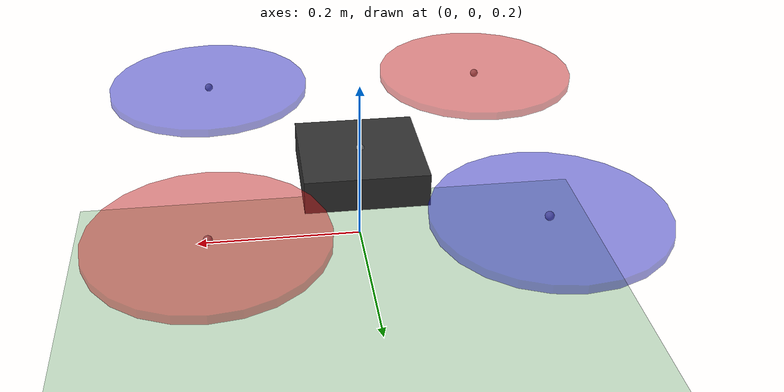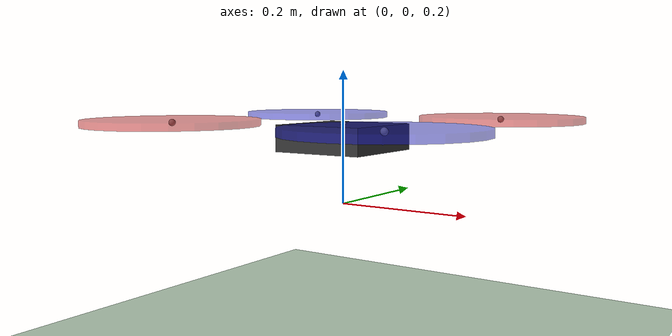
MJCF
<mujoco model="x500">
  <compiler autolimits="true"/>
  <option timestep="0.01" density="1.225" viscosity="1.8e-5" integrator="RK4"/>

  <worldbody>
    <light pos="0 0 3" dir="0 0 -1"/>
    <geom name="floor" type="plane" size="5 5 0.1" rgba="0.8 0.9 0.8 1"/>

    <body name="base_link" pos="0 0 0.3">
      <joint name="base" type="free"/>

      <inertial pos="0 0 0"
                mass="2.0"
                diaginertia="0.02167 0.02167 0.04"/>

      <!-- Body plate -->
      <geom type="box" size="0.072 0.072 0.02" rgba="0.2 0.2 0.2 1" mass="0"/>

      <site name="imu" pos="0 0 0.02"/>

      <!-- Motor 1: front-right (+x,-y), CCW → +yaw torque -->
      <body name="prop1" pos="0.177 -0.177 0.025">
        <inertial pos="0 0 0" mass="0.005"
                  diaginertia="3.75e-6 3.75e-6 7.5e-6"/>
        <joint name="prop1" axis="0 0 1"/>
        <geom type="cylinder" size="0.127 0.005" rgba="0.1 0.1 0.8 0.5" mass="0"/>
      </body>

      <!-- Motor 2: rear-right (-x,-y), CW → -yaw torque -->
      <body name="prop2" pos="-0.177 -0.177 0.025">
        <inertial pos="0 0 0" mass="0.005"
                  diaginertia="3.75e-6 3.75e-6 7.5e-6"/>
        <joint name="prop2" axis="0 0 1"/>
        <geom type="cylinder" size="0.127 0.005" rgba="0.8 0.1 0.1 0.5" mass="0"/>
      </body>

      <!-- Motor 3: rear-left (-x,+y), CCW → +yaw torque -->
      <body name="prop3" pos="-0.177 0.177 0.025">
        <inertial pos="0 0 0" mass="0.005"
                  diaginertia="3.75e-6 3.75e-6 7.5e-6"/>
        <joint name="prop3" axis="0 0 1"/>
        <geom type="cylinder" size="0.127 0.005" rgba="0.1 0.1 0.8 0.5" mass="0"/>
      </body>

      <!-- Motor 4: front-left (+x,+y), CW → -yaw torque -->
      <body name="prop4" pos="0.177 0.177 0.025">
        <inertial pos="0 0 0" mass="0.005"
                  diaginertia="3.75e-6 3.75e-6 7.5e-6"/>
        <joint name="prop4" axis="0 0 1"/>
        <geom type="cylinder" size="0.127 0.005" rgba="0.8 0.1 0.1 0.5" mass="0"/>
      </body>

      <!-- Thrust sites -->
      <site name="thrust1" pos="0.177 -0.177 0.025"/>
      <site name="thrust2" pos="-0.177 -0.177 0.025"/>
      <site name="thrust3" pos="-0.177 0.177 0.025"/>
      <site name="thrust4" pos="0.177 0.177 0.025"/>
    </body>
  </worldbody>

  <actuator>
    <!-- gear: "Fx Fy Fz Tx Ty Tz", torque sign = spin direction -->
    <motor name="thrust1" site="thrust1" gear="0 0 1 0 0  0.016" ctrlrange="0 9.81"/>
    <motor name="thrust2" site="thrust2" gear="0 0 1 0 0 -0.016" ctrlrange="0 9.81"/>
    <motor name="thrust3" site="thrust3" gear="0 0 1 0 0  0.016" ctrlrange="0 9.81"/>
    <motor name="thrust4" site="thrust4" gear="0 0 1 0 0 -0.016" ctrlrange="0 9.81"/>
  </actuator>

  <sensor>
    <gyro name="body_gyro" site="imu"/>
    <accelerometer name="body_linacc" site="imu"/>
    <framequat name="body_quat" objtype="site" objname="imu"/>
    <framepos name="body_pos" objtype="body" objname="base_link"/>
    <framelinvel name="body_vel" objtype="body" objname="base_link"/>
  </sensor>

  <keyframe>
    <!-- hover: each motor = mg/4 = 2.0*9.81/4 = 4.905 N -->
    <key name="hover" qpos="0 0 0.3 1 0 0 0" ctrl="4.905 4.905 4.905 4.905"/>
  </keyframe>

</mujoco>
